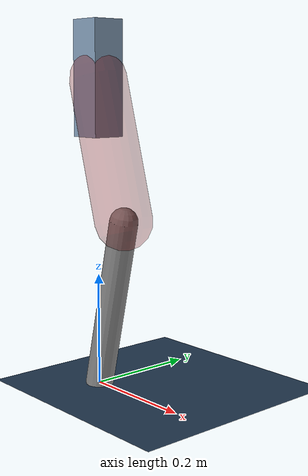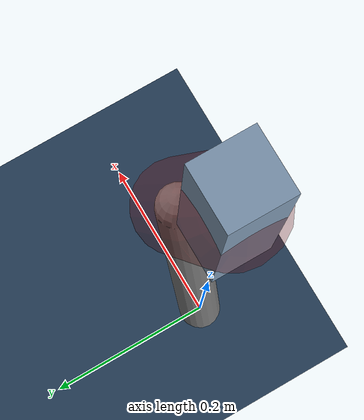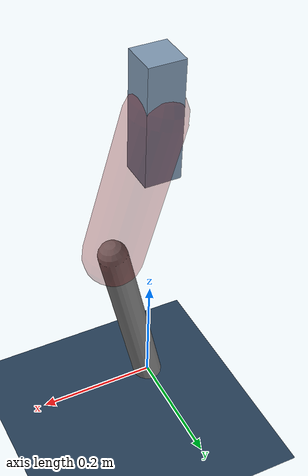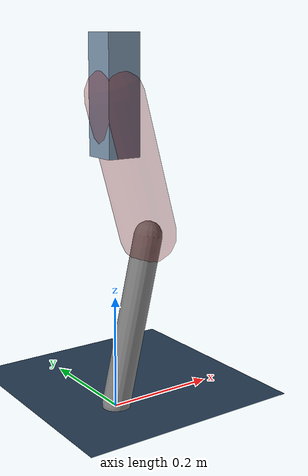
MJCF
<mujoco model="Hopper2D">
	<compiler inertiafromgeom="true" angle="radian" />
	<option timestep="0.001" integrator="implicit" cone="elliptic" solver="Newton" tolerance="1e-10" />

	<default>
		<geom contype="1" conaffinity="1" condim="3" friction="2 0.005 0.0001" solref="0.005 1" />
		<joint limited="true" damping="0.1" />
	</default>

	<asset>
		<texture name="skybox" type="skybox" builtin="gradient" rgb1=".4 .6 .8" rgb2="0 0 0" width="800" height="800" />
		<texture name="grid" type="2d" builtin="checker" rgb1=".1 .2 .3" rgb2=".2 .3 .4" width="300" height="300" mark="edge" markrgb=".2 .3 .4" />
		<material name="ground" texture="grid" texrepeat="1 1" texuniform="true" reflectance="0.1" />
		<material name="leg" rgba="0.5 0.6 0.7 1" />
	</asset>

	<worldbody>

		<geom name="floor" type="plane" size="5 5 0.25" material="ground" />

		<light directional="false" diffuse="0.8 0.8 0.8" specular="0.3 0.3 0.3" pos="0 0 2" dir="0 0 -1" />
		<light mode="targetbodycom" target="base" directional="false" diffuse="0.8 0.8 0.8" specular="0.3 0.3 0.3" pos="0 0 2" dir="0 0 -1" />

		<camera name="fixed" pos="0 -2 1" xyaxes="1 0 0 0 0 1" />
		<camera name="tracking" mode="trackcom" pos="0 -3 1" />

		<body name="root" pos="0 0 0.5446795301979207">
			<joint name="slide_x" type="slide" axis="1 0 0" range="-100 100" />
			<joint name="slide_z" type="slide" axis="0 0 1" range="0 10" />

			<body name="base" pos="0 0 0">
				<geom name="torso" type="box" size="0.03 0.03 0.1" mass="1.934" material="leg" />

				<body name="link1" pos="0 0 0" euler="0 1.2941313276072912 0">
					<joint type="hinge" axis="0 -1 0" pos="0 0 0" name="hinge1" limited="true" range="-3.14 3.14" stiffness="0" damping="0.1" />
					<geom name="thigh" type="capsule" fromto="0 0 0 0.25173267717292425 0 0" size="0.05" rgba="0.5 0 0 0.3" mass="0.8609049606496031" />

					<body name="link2" pos="0.25173267717292425 0 0" euler="0 0.5001605418908112 0">
						<joint type="hinge" axis="0 -1 0" pos="0 0 0" name="hinge2" limited="true" range="-3.14 3.14" stiffness="0" damping="0.1" />
						<geom name="shank" type="capsule" fromto="0 0 0 0.31023578962780607 0 0" size="0.025" mass="0.49178863170224485" />

					</body>
				</body>
			</body>
		</body>
	</worldbody>

	<actuator>
		<motor name="torque1" joint="hinge1" ctrlrange="-41.12943922060563 41.12943922060563" ctrllimited="true" gear="1" />
		<motor name="torque2" joint="hinge2" ctrlrange="-82.02640940605113 82.02640940605113" ctrllimited="true" gear="1" />
	</actuator>
</mujoco>
